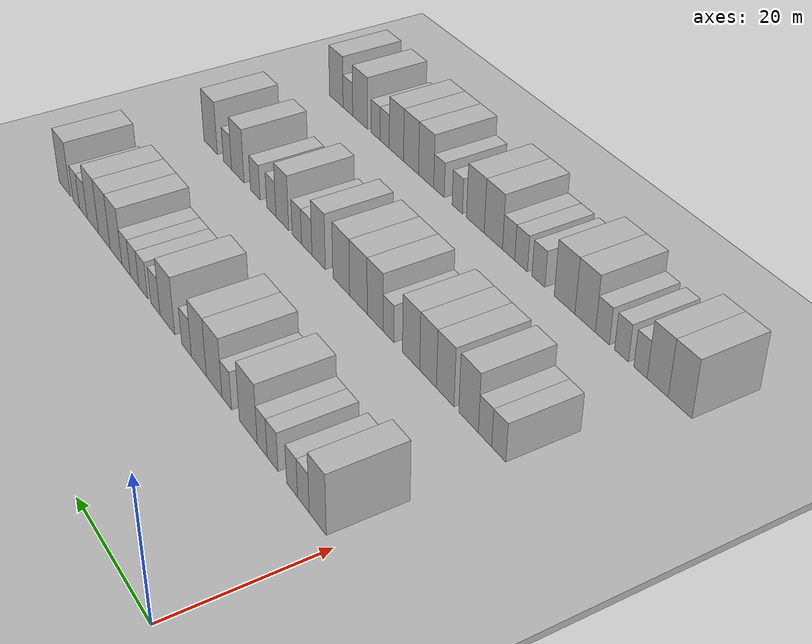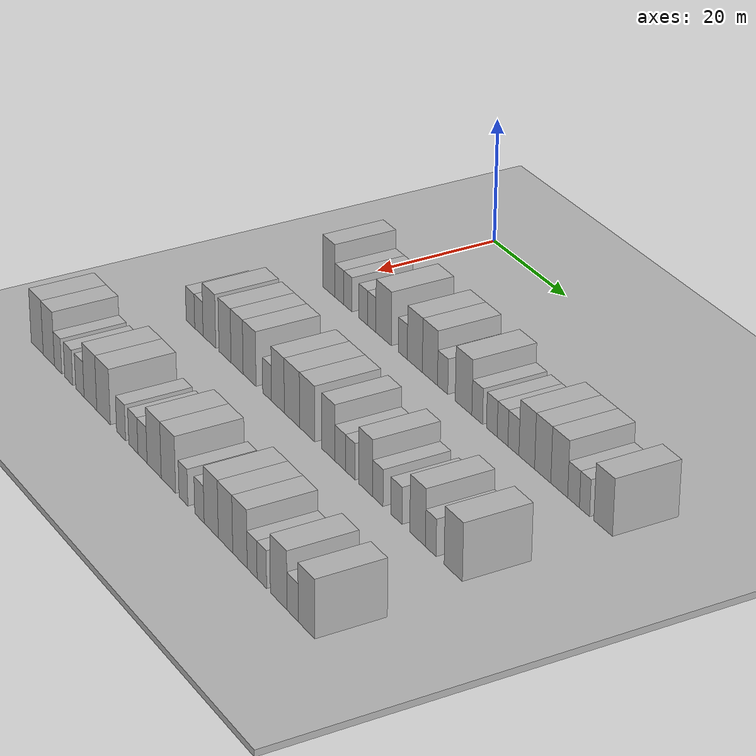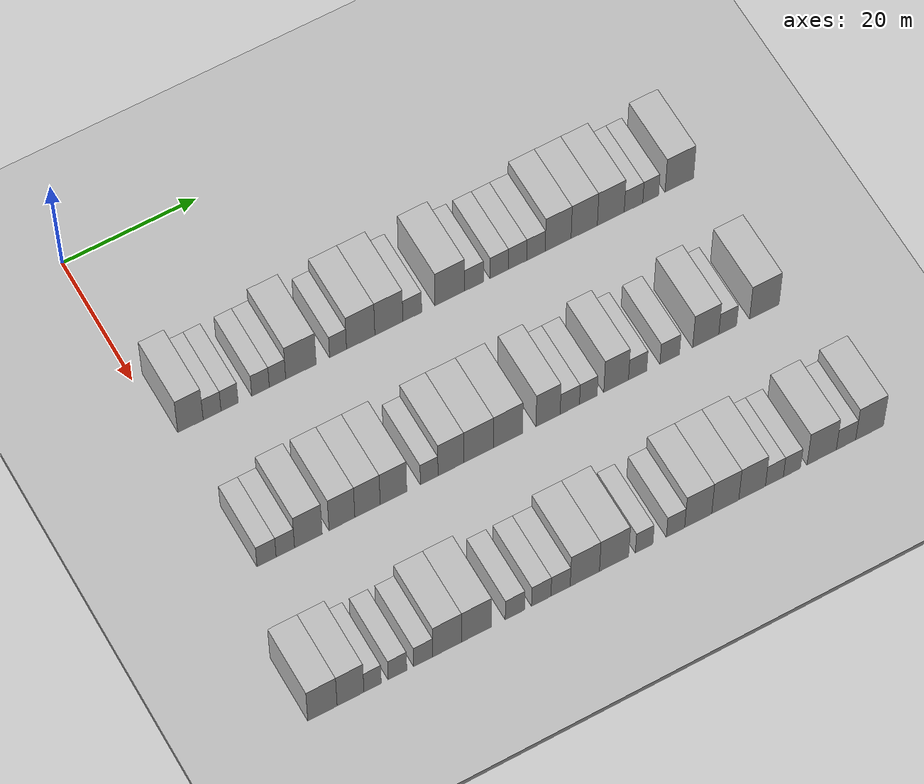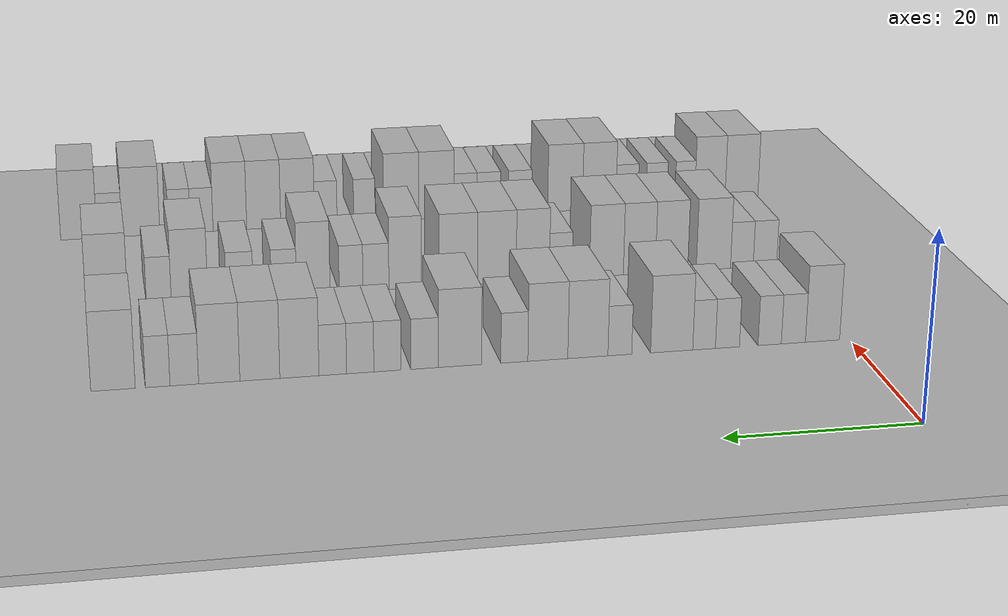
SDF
<sdf version="1.6">
 <world name="default">
  <include><name>ground_plane_1</name><uri>model://HANNAS_ground_plane</uri></include>
  <include>
   <name>ground_plane_2</name>
   <uri>model://HANNAS_ground_plane</uri>
   <pose>100 0 0  0 0 0</pose>
  </include>
  <model name="building_68">
   <static>1</static>
   <pose>25.0000 3.3737 0 0.000000 0.000000 0.000000</pose>
   <link name="link">
    <pose>0 0 4.50 0 0 0</pose>
    <collision name="collision"><geometry><box><size>10.0000 3.7300 9.0000</size></box></geometry></collision>
    <visual name="visual">
     <cast_shadows>0</cast_shadows>
     <geometry><box><size>10.0000 3.7300 9.0000</size></box></geometry>
     <material>
      <script>
       <uri>model://HANNAS_wall/materials/scripts</uri>
       <uri>model://HANNAS_wall/materials/textures</uri>
       <name>vrc/HANNAS_wall</name>
      </script>
     </material>
    </visual>
   </link>
  </model>
  <model name="building_69">
   <static>1</static>
   <pose>25.0000 6.5480 0 0.000000 0.000000 0.000000</pose>
   <link name="link">
    <pose>0 0 3.00 0 0 0</pose>
    <collision name="collision"><geometry><box><size>10.0000 2.6185 6.0000</size></box></geometry></collision>
    <visual name="visual">
     <cast_shadows>0</cast_shadows>
     <geometry><box><size>10.0000 2.6185 6.0000</size></box></geometry>
     <material>
      <script>
       <uri>model://HANNAS_wall/materials/scripts</uri>
       <uri>model://HANNAS_wall/materials/textures</uri>
       <name>vrc/HANNAS_wall</name>
      </script>
     </material>
    </visual>
   </link>
  </model>
  <model name="building_70">
   <static>1</static>
   <pose>25.0000 9.1156 0 0.000000 0.000000 0.000000</pose>
   <link name="link">
    <pose>0 0 3.00 0 0 0</pose>
    <collision name="collision"><geometry><box><size>10.0000 2.5166 6.0000</size></box></geometry></collision>
    <visual name="visual">
     <cast_shadows>0</cast_shadows>
     <geometry><box><size>10.0000 2.5166 6.0000</size></box></geometry>
     <material>
      <script>
       <uri>model://HANNAS_wall/materials/scripts</uri>
       <uri>model://HANNAS_wall/materials/textures</uri>
       <name>vrc/HANNAS_wall</name>
      </script>
     </material>
    </visual>
   </link>
  </model>
  <model name="building_71">
   <static>1</static>
   <pose>25.0000 13.6693 0 0.000000 0.000000 0.000000</pose>
   <link name="link">
    <pose>0 0 3.00 0 0 0</pose>
    <collision name="collision"><geometry><box><size>10.0000 2.5907 6.0000</size></box></geometry></collision>
    <visual name="visual">
     <cast_shadows>0</cast_shadows>
     <geometry><box><size>10.0000 2.5907 6.0000</size></box></geometry>
     <material>
      <script>
       <uri>model://HANNAS_wall/materials/scripts</uri>
       <uri>model://HANNAS_wall/materials/textures</uri>
       <name>vrc/HANNAS_wall</name>
      </script>
     </material>
    </visual>
   </link>
  </model>
  <model name="building_72">
   <static>1</static>
   <pose>25.0000 16.1778 0 0.000000 0.000000 0.000000</pose>
   <link name="link">
    <pose>0 0 3.00 0 0 0</pose>
    <collision name="collision"><geometry><box><size>10.0000 2.4264 6.0000</size></box></geometry></collision>
    <visual name="visual">
     <cast_shadows>0</cast_shadows>
     <geometry><box><size>10.0000 2.4264 6.0000</size></box></geometry>
     <material>
      <script>
       <uri>model://HANNAS_wall/materials/scripts</uri>
       <uri>model://HANNAS_wall/materials/textures</uri>
       <name>vrc/HANNAS_wall</name>
      </script>
     </material>
    </visual>
   </link>
  </model>
  <model name="building_73">
   <static>1</static>
   <pose>25.0000 19.6406 0 0.000000 0.000000 0.000000</pose>
   <link name="link">
    <pose>0 0 4.50 0 0 0</pose>
    <collision name="collision"><geometry><box><size>10.0000 4.4991 9.0000</size></box></geometry></collision>
    <visual name="visual">
     <cast_shadows>0</cast_shadows>
     <geometry><box><size>10.0000 4.4991 9.0000</size></box></geometry>
     <material>
      <script>
       <uri>model://HANNAS_wall/materials/scripts</uri>
       <uri>model://HANNAS_wall/materials/textures</uri>
       <name>vrc/HANNAS_wall</name>
      </script>
     </material>
    </visual>
   </link>
  </model>
  <model name="building_74">
   <static>1</static>
   <pose>25.0000 25.1508 0 0.000000 0.000000 0.000000</pose>
   <link name="link">
    <pose>0 0 3.00 0 0 0</pose>
    <collision name="collision"><geometry><box><size>10.0000 2.5212 6.0000</size></box></geometry></collision>
    <visual name="visual">
     <cast_shadows>0</cast_shadows>
     <geometry><box><size>10.0000 2.5212 6.0000</size></box></geometry>
     <material>
      <script>
       <uri>model://HANNAS_wall/materials/scripts</uri>
       <uri>model://HANNAS_wall/materials/textures</uri>
       <name>vrc/HANNAS_wall</name>
      </script>
     </material>
    </visual>
   </link>
  </model>
  <model name="building_75">
   <static>1</static>
   <pose>25.0000 28.5255 0 0.000000 0.000000 0.000000</pose>
   <link name="link">
    <pose>0 0 4.50 0 0 0</pose>
    <collision name="collision"><geometry><box><size>10.0000 4.2283 9.0000</size></box></geometry></collision>
    <visual name="visual">
     <cast_shadows>0</cast_shadows>
     <geometry><box><size>10.0000 4.2283 9.0000</size></box></geometry>
     <material>
      <script>
       <uri>model://HANNAS_wall/materials/scripts</uri>
       <uri>model://HANNAS_wall/materials/textures</uri>
       <name>vrc/HANNAS_wall</name>
      </script>
     </material>
    </visual>
   </link>
  </model>
  <model name="building_76">
   <static>1</static>
   <pose>25.0000 32.7305 0 0.000000 0.000000 0.000000</pose>
   <link name="link">
    <pose>0 0 4.50 0 0 0</pose>
    <collision name="collision"><geometry><box><size>10.0000 4.1818 9.0000</size></box></geometry></collision>
    <visual name="visual">
     <cast_shadows>0</cast_shadows>
     <geometry><box><size>10.0000 4.1818 9.0000</size></box></geometry>
     <material>
      <script>
       <uri>model://HANNAS_wall/materials/scripts</uri>
       <uri>model://HANNAS_wall/materials/textures</uri>
       <name>vrc/HANNAS_wall</name>
      </script>
     </material>
    </visual>
   </link>
  </model>
  <model name="building_77">
   <static>1</static>
   <pose>25.0000 36.2340 0 0.000000 0.000000 0.000000</pose>
   <link name="link">
    <pose>0 0 3.00 0 0 0</pose>
    <collision name="collision"><geometry><box><size>10.0000 2.8250 6.0000</size></box></geometry></collision>
    <visual name="visual">
     <cast_shadows>0</cast_shadows>
     <geometry><box><size>10.0000 2.8250 6.0000</size></box></geometry>
     <material>
      <script>
       <uri>model://HANNAS_wall/materials/scripts</uri>
       <uri>model://HANNAS_wall/materials/textures</uri>
       <name>vrc/HANNAS_wall</name>
      </script>
     </material>
    </visual>
   </link>
  </model>
  <model name="building_78">
   <static>1</static>
   <pose>25.0000 41.8731 0 0.000000 0.000000 0.000000</pose>
   <link name="link">
    <pose>0 0 4.50 0 0 0</pose>
    <collision name="collision"><geometry><box><size>10.0000 4.4532 9.0000</size></box></geometry></collision>
    <visual name="visual">
     <cast_shadows>0</cast_shadows>
     <geometry><box><size>10.0000 4.4532 9.0000</size></box></geometry>
     <material>
      <script>
       <uri>model://HANNAS_wall/materials/scripts</uri>
       <uri>model://HANNAS_wall/materials/textures</uri>
       <name>vrc/HANNAS_wall</name>
      </script>
     </material>
    </visual>
   </link>
  </model>
  <model name="building_79">
   <static>1</static>
   <pose>25.0000 45.5227 0 0.000000 0.000000 0.000000</pose>
   <link name="link">
    <pose>0 0 3.00 0 0 0</pose>
    <collision name="collision"><geometry><box><size>10.0000 2.8459 6.0000</size></box></geometry></collision>
    <visual name="visual">
     <cast_shadows>0</cast_shadows>
     <geometry><box><size>10.0000 2.8459 6.0000</size></box></geometry>
     <material>
      <script>
       <uri>model://HANNAS_wall/materials/scripts</uri>
       <uri>model://HANNAS_wall/materials/textures</uri>
       <name>vrc/HANNAS_wall</name>
      </script>
     </material>
    </visual>
   </link>
  </model>
  <model name="building_80">
   <static>1</static>
   <pose>25.0000 49.3388 0 0.000000 0.000000 0.000000</pose>
   <link name="link">
    <pose>0 0 3.00 0 0 0</pose>
    <collision name="collision"><geometry><box><size>10.0000 2.7863 6.0000</size></box></geometry></collision>
    <visual name="visual">
     <cast_shadows>0</cast_shadows>
     <geometry><box><size>10.0000 2.7863 6.0000</size></box></geometry>
     <material>
      <script>
       <uri>model://HANNAS_wall/materials/scripts</uri>
       <uri>model://HANNAS_wall/materials/textures</uri>
       <name>vrc/HANNAS_wall</name>
      </script>
     </material>
    </visual>
   </link>
  </model>
  <model name="building_81">
   <static>1</static>
   <pose>25.0000 52.1222 0 0.000000 0.000000 0.000000</pose>
   <link name="link">
    <pose>0 0 3.00 0 0 0</pose>
    <collision name="collision"><geometry><box><size>10.0000 2.7805 6.0000</size></box></geometry></collision>
    <visual name="visual">
     <cast_shadows>0</cast_shadows>
     <geometry><box><size>10.0000 2.7805 6.0000</size></box></geometry>
     <material>
      <script>
       <uri>model://HANNAS_wall/materials/scripts</uri>
       <uri>model://HANNAS_wall/materials/textures</uri>
       <name>vrc/HANNAS_wall</name>
      </script>
     </material>
    </visual>
   </link>
  </model>
  <model name="building_82">
   <static>1</static>
   <pose>25.0000 54.9152 0 0.000000 0.000000 0.000000</pose>
   <link name="link">
    <pose>0 0 3.00 0 0 0</pose>
    <collision name="collision"><geometry><box><size>10.0000 2.8055 6.0000</size></box></geometry></collision>
    <visual name="visual">
     <cast_shadows>0</cast_shadows>
     <geometry><box><size>10.0000 2.8055 6.0000</size></box></geometry>
     <material>
      <script>
       <uri>model://HANNAS_wall/materials/scripts</uri>
       <uri>model://HANNAS_wall/materials/textures</uri>
       <name>vrc/HANNAS_wall</name>
      </script>
     </material>
    </visual>
   </link>
  </model>
  <model name="building_83">
   <static>1</static>
   <pose>25.0000 58.2975 0 0.000000 0.000000 0.000000</pose>
   <link name="link">
    <pose>0 0 4.50 0 0 0</pose>
    <collision name="collision"><geometry><box><size>10.0000 3.9589 9.0000</size></box></geometry></collision>
    <visual name="visual">
     <cast_shadows>0</cast_shadows>
     <geometry><box><size>10.0000 3.9589 9.0000</size></box></geometry>
     <material>
      <script>
       <uri>model://HANNAS_wall/materials/scripts</uri>
       <uri>model://HANNAS_wall/materials/textures</uri>
       <name>vrc/HANNAS_wall</name>
      </script>
     </material>
    </visual>
   </link>
  </model>
  <model name="building_84">
   <static>1</static>
   <pose>25.0000 62.2839 0 0.000000 0.000000 0.000000</pose>
   <link name="link">
    <pose>0 0 4.50 0 0 0</pose>
    <collision name="collision"><geometry><box><size>10.0000 4.0139 9.0000</size></box></geometry></collision>
    <visual name="visual">
     <cast_shadows>0</cast_shadows>
     <geometry><box><size>10.0000 4.0139 9.0000</size></box></geometry>
     <material>
      <script>
       <uri>model://HANNAS_wall/materials/scripts</uri>
       <uri>model://HANNAS_wall/materials/textures</uri>
       <name>vrc/HANNAS_wall</name>
      </script>
     </material>
    </visual>
   </link>
  </model>
  <model name="building_85">
   <static>1</static>
   <pose>25.0000 66.3540 0 0.000000 0.000000 0.000000</pose>
   <link name="link">
    <pose>0 0 4.50 0 0 0</pose>
    <collision name="collision"><geometry><box><size>10.0000 4.1264 9.0000</size></box></geometry></collision>
    <visual name="visual">
     <cast_shadows>0</cast_shadows>
     <geometry><box><size>10.0000 4.1264 9.0000</size></box></geometry>
     <material>
      <script>
       <uri>model://HANNAS_wall/materials/scripts</uri>
       <uri>model://HANNAS_wall/materials/textures</uri>
       <name>vrc/HANNAS_wall</name>
      </script>
     </material>
    </visual>
   </link>
  </model>
  <model name="building_86">
   <static>1</static>
   <pose>25.0000 69.8412 0 0.000000 0.000000 0.000000</pose>
   <link name="link">
    <pose>0 0 3.00 0 0 0</pose>
    <collision name="collision"><geometry><box><size>10.0000 2.8480 6.0000</size></box></geometry></collision>
    <visual name="visual">
     <cast_shadows>0</cast_shadows>
     <geometry><box><size>10.0000 2.8480 6.0000</size></box></geometry>
     <material>
      <script>
       <uri>model://HANNAS_wall/materials/scripts</uri>
       <uri>model://HANNAS_wall/materials/textures</uri>
       <name>vrc/HANNAS_wall</name>
      </script>
     </material>
    </visual>
   </link>
  </model>
  <model name="building_87">
   <static>1</static>
   <pose>25.0000 72.4859 0 0.000000 0.000000 0.000000</pose>
   <link name="link">
    <pose>0 0 3.00 0 0 0</pose>
    <collision name="collision"><geometry><box><size>10.0000 2.4414 6.0000</size></box></geometry></collision>
    <visual name="visual">
     <cast_shadows>0</cast_shadows>
     <geometry><box><size>10.0000 2.4414 6.0000</size></box></geometry>
     <material>
      <script>
       <uri>model://HANNAS_wall/materials/scripts</uri>
       <uri>model://HANNAS_wall/materials/textures</uri>
       <name>vrc/HANNAS_wall</name>
      </script>
     </material>
    </visual>
   </link>
  </model>
  <model name="building_88">
   <static>1</static>
   <pose>25.0000 76.9000 0 0.000000 0.000000 0.000000</pose>
   <link name="link">
    <pose>0 0 4.50 0 0 0</pose>
    <collision name="collision"><geometry><box><size>10.0000 4.3868 9.0000</size></box></geometry></collision>
    <visual name="visual">
     <cast_shadows>0</cast_shadows>
     <geometry><box><size>10.0000 4.3868 9.0000</size></box></geometry>
     <material>
      <script>
       <uri>model://HANNAS_wall/materials/scripts</uri>
       <uri>model://HANNAS_wall/materials/textures</uri>
       <name>vrc/HANNAS_wall</name>
      </script>
     </material>
    </visual>
   </link>
  </model>
  <model name="building_199">
   <static>1</static>
   <pose>47.0000 2.7387 0 0.000000 0.000000 0.000000</pose>
   <link name="link">
    <pose>0 0 3.00 0 0 0</pose>
    <collision name="collision"><geometry><box><size>10.0000 2.7707 6.0000</size></box></geometry></collision>
    <visual name="visual">
     <cast_shadows>0</cast_shadows>
     <geometry><box><size>10.0000 2.7707 6.0000</size></box></geometry>
     <material>
      <script>
       <uri>model://HANNAS_wall/materials/scripts</uri>
       <uri>model://HANNAS_wall/materials/textures</uri>
       <name>vrc/HANNAS_wall</name>
      </script>
     </material>
    </visual>
   </link>
  </model>
  <model name="building_200">
   <static>1</static>
   <pose>47.0000 5.4608 0 0.000000 0.000000 0.000000</pose>
   <link name="link">
    <pose>0 0 3.00 0 0 0</pose>
    <collision name="collision"><geometry><box><size>10.0000 2.6737 6.0000</size></box></geometry></collision>
    <visual name="visual">
     <cast_shadows>0</cast_shadows>
     <geometry><box><size>10.0000 2.6737 6.0000</size></box></geometry>
     <material>
      <script>
       <uri>model://HANNAS_wall/materials/scripts</uri>
       <uri>model://HANNAS_wall/materials/textures</uri>
       <name>vrc/HANNAS_wall</name>
      </script>
     </material>
    </visual>
   </link>
  </model>
  <model name="building_201">
   <static>1</static>
   <pose>47.0000 8.8042 0 0.000000 0.000000 0.000000</pose>
   <link name="link">
    <pose>0 0 4.50 0 0 0</pose>
    <collision name="collision"><geometry><box><size>10.0000 4.0131 9.0000</size></box></geometry></collision>
    <visual name="visual">
     <cast_shadows>0</cast_shadows>
     <geometry><box><size>10.0000 4.0131 9.0000</size></box></geometry>
     <material>
      <script>
       <uri>model://HANNAS_wall/materials/scripts</uri>
       <uri>model://HANNAS_wall/materials/textures</uri>
       <name>vrc/HANNAS_wall</name>
      </script>
     </material>
    </visual>
   </link>
  </model>
  <model name="building_202">
   <static>1</static>
   <pose>47.0000 13.6943 0 0.000000 0.000000 0.000000</pose>
   <link name="link">
    <pose>0 0 4.50 0 0 0</pose>
    <collision name="collision"><geometry><box><size>10.0000 3.7670 9.0000</size></box></geometry></collision>
    <visual name="visual">
     <cast_shadows>0</cast_shadows>
     <geometry><box><size>10.0000 3.7670 9.0000</size></box></geometry>
     <material>
      <script>
       <uri>model://HANNAS_wall/materials/scripts</uri>
       <uri>model://HANNAS_wall/materials/textures</uri>
       <name>vrc/HANNAS_wall</name>
      </script>
     </material>
    </visual>
   </link>
  </model>
  <model name="building_203">
   <static>1</static>
   <pose>47.0000 17.4329 0 0.000000 0.000000 0.000000</pose>
   <link name="link">
    <pose>0 0 4.50 0 0 0</pose>
    <collision name="collision"><geometry><box><size>10.0000 3.7102 9.0000</size></box></geometry></collision>
    <visual name="visual">
     <cast_shadows>0</cast_shadows>
     <geometry><box><size>10.0000 3.7102 9.0000</size></box></geometry>
     <material>
      <script>
       <uri>model://HANNAS_wall/materials/scripts</uri>
       <uri>model://HANNAS_wall/materials/textures</uri>
       <name>vrc/HANNAS_wall</name>
      </script>
     </material>
    </visual>
   </link>
  </model>
  <model name="building_204">
   <static>1</static>
   <pose>47.0000 21.2386 0 0.000000 0.000000 0.000000</pose>
   <link name="link">
    <pose>0 0 4.50 0 0 0</pose>
    <collision name="collision"><geometry><box><size>10.0000 3.9012 9.0000</size></box></geometry></collision>
    <visual name="visual">
     <cast_shadows>0</cast_shadows>
     <geometry><box><size>10.0000 3.9012 9.0000</size></box></geometry>
     <material>
      <script>
       <uri>model://HANNAS_wall/materials/scripts</uri>
       <uri>model://HANNAS_wall/materials/textures</uri>
       <name>vrc/HANNAS_wall</name>
      </script>
     </material>
    </visual>
   </link>
  </model>
  <model name="building_205">
   <static>1</static>
   <pose>47.0000 26.4906 0 0.000000 0.000000 0.000000</pose>
   <link name="link">
    <pose>0 0 3.00 0 0 0</pose>
    <collision name="collision"><geometry><box><size>10.0000 2.6029 6.0000</size></box></geometry></collision>
    <visual name="visual">
     <cast_shadows>0</cast_shadows>
     <geometry><box><size>10.0000 2.6029 6.0000</size></box></geometry>
     <material>
      <script>
       <uri>model://HANNAS_wall/materials/scripts</uri>
       <uri>model://HANNAS_wall/materials/textures</uri>
       <name>vrc/HANNAS_wall</name>
      </script>
     </material>
    </visual>
   </link>
  </model>
  <model name="building_206">
   <static>1</static>
   <pose>47.0000 29.6896 0 0.000000 0.000000 0.000000</pose>
   <link name="link">
    <pose>0 0 4.50 0 0 0</pose>
    <collision name="collision"><geometry><box><size>10.0000 3.7950 9.0000</size></box></geometry></collision>
    <visual name="visual">
     <cast_shadows>0</cast_shadows>
     <geometry><box><size>10.0000 3.7950 9.0000</size></box></geometry>
     <material>
      <script>
       <uri>model://HANNAS_wall/materials/scripts</uri>
       <uri>model://HANNAS_wall/materials/textures</uri>
       <name>vrc/HANNAS_wall</name>
      </script>
     </material>
    </visual>
   </link>
  </model>
  <model name="building_207">
   <static>1</static>
   <pose>47.0000 33.7867 0 0.000000 0.000000 0.000000</pose>
   <link name="link">
    <pose>0 0 4.50 0 0 0</pose>
    <collision name="collision"><geometry><box><size>10.0000 4.3993 9.0000</size></box></geometry></collision>
    <visual name="visual">
     <cast_shadows>0</cast_shadows>
     <geometry><box><size>10.0000 4.3993 9.0000</size></box></geometry>
     <material>
      <script>
       <uri>model://HANNAS_wall/materials/scripts</uri>
       <uri>model://HANNAS_wall/materials/textures</uri>
       <name>vrc/HANNAS_wall</name>
      </script>
     </material>
    </visual>
   </link>
  </model>
  <model name="building_208">
   <static>1</static>
   <pose>47.0000 38.1537 0 0.000000 0.000000 0.000000</pose>
   <link name="link">
    <pose>0 0 4.50 0 0 0</pose>
    <collision name="collision"><geometry><box><size>10.0000 4.3348 9.0000</size></box></geometry></collision>
    <visual name="visual">
     <cast_shadows>0</cast_shadows>
     <geometry><box><size>10.0000 4.3348 9.0000</size></box></geometry>
     <material>
      <script>
       <uri>model://HANNAS_wall/materials/scripts</uri>
       <uri>model://HANNAS_wall/materials/textures</uri>
       <name>vrc/HANNAS_wall</name>
      </script>
     </material>
    </visual>
   </link>
  </model>
  <model name="building_209">
   <static>1</static>
   <pose>47.0000 44.1318 0 0.000000 0.000000 0.000000</pose>
   <link name="link">
    <pose>0 0 4.50 0 0 0</pose>
    <collision name="collision"><geometry><box><size>10.0000 3.6214 9.0000</size></box></geometry></collision>
    <visual name="visual">
     <cast_shadows>0</cast_shadows>
     <geometry><box><size>10.0000 3.6214 9.0000</size></box></geometry>
     <material>
      <script>
       <uri>model://HANNAS_wall/materials/scripts</uri>
       <uri>model://HANNAS_wall/materials/textures</uri>
       <name>vrc/HANNAS_wall</name>
      </script>
     </material>
    </visual>
   </link>
  </model>
  <model name="building_210">
   <static>1</static>
   <pose>47.0000 47.3916 0 0.000000 0.000000 0.000000</pose>
   <link name="link">
    <pose>0 0 3.00 0 0 0</pose>
    <collision name="collision"><geometry><box><size>10.0000 2.8982 6.0000</size></box></geometry></collision>
    <visual name="visual">
     <cast_shadows>0</cast_shadows>
     <geometry><box><size>10.0000 2.8982 6.0000</size></box></geometry>
     <material>
      <script>
       <uri>model://HANNAS_wall/materials/scripts</uri>
       <uri>model://HANNAS_wall/materials/textures</uri>
       <name>vrc/HANNAS_wall</name>
      </script>
     </material>
    </visual>
   </link>
  </model>
  <model name="building_211">
   <static>1</static>
   <pose>47.0000 50.1635 0 0.000000 0.000000 0.000000</pose>
   <link name="link">
    <pose>0 0 3.00 0 0 0</pose>
    <collision name="collision"><geometry><box><size>10.0000 2.6455 6.0000</size></box></geometry></collision>
    <visual name="visual">
     <cast_shadows>0</cast_shadows>
     <geometry><box><size>10.0000 2.6455 6.0000</size></box></geometry>
     <material>
      <script>
       <uri>model://HANNAS_wall/materials/scripts</uri>
       <uri>model://HANNAS_wall/materials/textures</uri>
       <name>vrc/HANNAS_wall</name>
      </script>
     </material>
    </visual>
   </link>
  </model>
  <model name="building_212">
   <static>1</static>
   <pose>47.0000 54.3451 0 0.000000 0.000000 0.000000</pose>
   <link name="link">
    <pose>0 0 4.50 0 0 0</pose>
    <collision name="collision"><geometry><box><size>10.0000 3.7178 9.0000</size></box></geometry></collision>
    <visual name="visual">
     <cast_shadows>0</cast_shadows>
     <geometry><box><size>10.0000 3.7178 9.0000</size></box></geometry>
     <material>
      <script>
       <uri>model://HANNAS_wall/materials/scripts</uri>
       <uri>model://HANNAS_wall/materials/textures</uri>
       <name>vrc/HANNAS_wall</name>
      </script>
     </material>
    </visual>
   </link>
  </model>
  <model name="building_213">
   <static>1</static>
   <pose>47.0000 57.5817 0 0.000000 0.000000 0.000000</pose>
   <link name="link">
    <pose>0 0 3.00 0 0 0</pose>
    <collision name="collision"><geometry><box><size>10.0000 2.7553 6.0000</size></box></geometry></collision>
    <visual name="visual">
     <cast_shadows>0</cast_shadows>
     <geometry><box><size>10.0000 2.7553 6.0000</size></box></geometry>
     <material>
      <script>
       <uri>model://HANNAS_wall/materials/scripts</uri>
       <uri>model://HANNAS_wall/materials/textures</uri>
       <name>vrc/HANNAS_wall</name>
      </script>
     </material>
    </visual>
   </link>
  </model>
  <model name="building_214">
   <static>1</static>
   <pose>47.0000 62.4388 0 0.000000 0.000000 0.000000</pose>
   <link name="link">
    <pose>0 0 3.00 0 0 0</pose>
    <collision name="collision"><geometry><box><size>10.0000 2.9589 6.0000</size></box></geometry></collision>
    <visual name="visual">
     <cast_shadows>0</cast_shadows>
     <geometry><box><size>10.0000 2.9589 6.0000</size></box></geometry>
     <material>
      <script>
       <uri>model://HANNAS_wall/materials/scripts</uri>
       <uri>model://HANNAS_wall/materials/textures</uri>
       <name>vrc/HANNAS_wall</name>
      </script>
     </material>
    </visual>
   </link>
  </model>
  <model name="building_215">
   <static>1</static>
   <pose>47.0000 67.9080 0 0.000000 0.000000 0.000000</pose>
   <link name="link">
    <pose>0 0 4.50 0 0 0</pose>
    <collision name="collision"><geometry><box><size>10.0000 3.9795 9.0000</size></box></geometry></collision>
    <visual name="visual">
     <cast_shadows>0</cast_shadows>
     <geometry><box><size>10.0000 3.9795 9.0000</size></box></geometry>
     <material>
      <script>
       <uri>model://HANNAS_wall/materials/scripts</uri>
       <uri>model://HANNAS_wall/materials/textures</uri>
       <name>vrc/HANNAS_wall</name>
      </script>
     </material>
    </visual>
   </link>
  </model>
  <model name="building_216">
   <static>1</static>
   <pose>47.0000 71.2483 0 0.000000 0.000000 0.000000</pose>
   <link name="link">
    <pose>0 0 3.00 0 0 0</pose>
    <collision name="collision"><geometry><box><size>10.0000 2.7011 6.0000</size></box></geometry></collision>
    <visual name="visual">
     <cast_shadows>0</cast_shadows>
     <geometry><box><size>10.0000 2.7011 6.0000</size></box></geometry>
     <material>
      <script>
       <uri>model://HANNAS_wall/materials/scripts</uri>
       <uri>model://HANNAS_wall/materials/textures</uri>
       <name>vrc/HANNAS_wall</name>
      </script>
     </material>
    </visual>
   </link>
  </model>
  <model name="building_217">
   <static>1</static>
   <pose>47.0000 76.8460 0 0.000000 0.000000 0.000000</pose>
   <link name="link">
    <pose>0 0 4.50 0 0 0</pose>
    <collision name="collision"><geometry><box><size>10.0000 4.4944 9.0000</size></box></geometry></collision>
    <visual name="visual">
     <cast_shadows>0</cast_shadows>
     <geometry><box><size>10.0000 4.4944 9.0000</size></box></geometry>
     <material>
      <script>
       <uri>model://HANNAS_wall/materials/scripts</uri>
       <uri>model://HANNAS_wall/materials/textures</uri>
       <name>vrc/HANNAS_wall</name>
      </script>
     </material>
    </visual>
   </link>
  </model>
  <model name="building_316">
   <static>1</static>
   <pose>69.0000 -1.1263 0 0.000000 0.000000 0.000000</pose>
   <link name="link">
    <pose>0 0 4.50 0 0 0</pose>
    <collision name="collision"><geometry><box><size>10.0000 4.1881 9.0000</size></box></geometry></collision>
    <visual name="visual">
     <cast_shadows>0</cast_shadows>
     <geometry><box><size>10.0000 4.1881 9.0000</size></box></geometry>
     <material>
      <script>
       <uri>model://HANNAS_wall/materials/scripts</uri>
       <uri>model://HANNAS_wall/materials/textures</uri>
       <name>vrc/HANNAS_wall</name>
      </script>
     </material>
    </visual>
   </link>
  </model>
  <model name="building_317">
   <static>1</static>
   <pose>69.0000 2.8905 0 0.000000 0.000000 0.000000</pose>
   <link name="link">
    <pose>0 0 4.50 0 0 0</pose>
    <collision name="collision"><geometry><box><size>10.0000 3.8454 9.0000</size></box></geometry></collision>
    <visual name="visual">
     <cast_shadows>0</cast_shadows>
     <geometry><box><size>10.0000 3.8454 9.0000</size></box></geometry>
     <material>
      <script>
       <uri>model://HANNAS_wall/materials/scripts</uri>
       <uri>model://HANNAS_wall/materials/textures</uri>
       <name>vrc/HANNAS_wall</name>
      </script>
     </material>
    </visual>
   </link>
  </model>
  <model name="building_318">
   <static>1</static>
   <pose>69.0000 6.0544 0 0.000000 0.000000 0.000000</pose>
   <link name="link">
    <pose>0 0 3.00 0 0 0</pose>
    <collision name="collision"><geometry><box><size>10.0000 2.4822 6.0000</size></box></geometry></collision>
    <visual name="visual">
     <cast_shadows>0</cast_shadows>
     <geometry><box><size>10.0000 2.4822 6.0000</size></box></geometry>
     <material>
      <script>
       <uri>model://HANNAS_wall/materials/scripts</uri>
       <uri>model://HANNAS_wall/materials/textures</uri>
       <name>vrc/HANNAS_wall</name>
      </script>
     </material>
    </visual>
   </link>
  </model>
  <model name="building_319">
   <static>1</static>
   <pose>69.0000 9.6330 0 0.000000 0.000000 0.000000</pose>
   <link name="link">
    <pose>0 0 3.00 0 0 0</pose>
    <collision name="collision"><geometry><box><size>10.0000 2.6751 6.0000</size></box></geometry></collision>
    <visual name="visual">
     <cast_shadows>0</cast_shadows>
     <geometry><box><size>10.0000 2.6751 6.0000</size></box></geometry>
     <material>
      <script>
       <uri>model://HANNAS_wall/materials/scripts</uri>
       <uri>model://HANNAS_wall/materials/textures</uri>
       <name>vrc/HANNAS_wall</name>
      </script>
     </material>
    </visual>
   </link>
  </model>
  <model name="building_320">
   <static>1</static>
   <pose>69.0000 13.3513 0 0.000000 0.000000 0.000000</pose>
   <link name="link">
    <pose>0 0 3.00 0 0 0</pose>
    <collision name="collision"><geometry><box><size>10.0000 2.7615 6.0000</size></box></geometry></collision>
    <visual name="visual">
     <cast_shadows>0</cast_shadows>
     <geometry><box><size>10.0000 2.7615 6.0000</size></box></geometry>
     <material>
      <script>
       <uri>model://HANNAS_wall/materials/scripts</uri>
       <uri>model://HANNAS_wall/materials/textures</uri>
       <name>vrc/HANNAS_wall</name>
      </script>
     </material>
    </visual>
   </link>
  </model>
  <model name="building_321">
   <static>1</static>
   <pose>69.0000 16.8161 0 0.000000 0.000000 0.000000</pose>
   <link name="link">
    <pose>0 0 4.50 0 0 0</pose>
    <collision name="collision"><geometry><box><size>10.0000 4.1680 9.0000</size></box></geometry></collision>
    <visual name="visual">
     <cast_shadows>0</cast_shadows>
     <geometry><box><size>10.0000 4.1680 9.0000</size></box></geometry>
     <material>
      <script>
       <uri>model://HANNAS_wall/materials/scripts</uri>
       <uri>model://HANNAS_wall/materials/textures</uri>
       <name>vrc/HANNAS_wall</name>
      </script>
     </material>
    </visual>
   </link>
  </model>
  <model name="building_322">
   <static>1</static>
   <pose>69.0000 21.0716 0 0.000000 0.000000 0.000000</pose>
   <link name="link">
    <pose>0 0 4.50 0 0 0</pose>
    <collision name="collision"><geometry><box><size>10.0000 4.3431 9.0000</size></box></geometry></collision>
    <visual name="visual">
     <cast_shadows>0</cast_shadows>
     <geometry><box><size>10.0000 4.3431 9.0000</size></box></geometry>
     <material>
      <script>
       <uri>model://HANNAS_wall/materials/scripts</uri>
       <uri>model://HANNAS_wall/materials/textures</uri>
       <name>vrc/HANNAS_wall</name>
      </script>
     </material>
    </visual>
   </link>
  </model>
  <model name="building_323">
   <static>1</static>
   <pose>69.0000 26.6615 0 0.000000 0.000000 0.000000</pose>
   <link name="link">
    <pose>0 0 3.00 0 0 0</pose>
    <collision name="collision"><geometry><box><size>10.0000 2.8368 6.0000</size></box></geometry></collision>
    <visual name="visual">
     <cast_shadows>0</cast_shadows>
     <geometry><box><size>10.0000 2.8368 6.0000</size></box></geometry>
     <material>
      <script>
       <uri>model://HANNAS_wall/materials/scripts</uri>
       <uri>model://HANNAS_wall/materials/textures</uri>
       <name>vrc/HANNAS_wall</name>
      </script>
     </material>
    </visual>
   </link>
  </model>
  <model name="building_324">
   <static>1</static>
   <pose>69.0000 30.5073 0 0.000000 0.000000 0.000000</pose>
   <link name="link">
    <pose>0 0 3.00 0 0 0</pose>
    <collision name="collision"><geometry><box><size>10.0000 2.8547 6.0000</size></box></geometry></collision>
    <visual name="visual">
     <cast_shadows>0</cast_shadows>
     <geometry><box><size>10.0000 2.8547 6.0000</size></box></geometry>
     <material>
      <script>
       <uri>model://HANNAS_wall/materials/scripts</uri>
       <uri>model://HANNAS_wall/materials/textures</uri>
       <name>vrc/HANNAS_wall</name>
      </script>
     </material>
    </visual>
   </link>
  </model>
  <model name="building_325">
   <static>1</static>
   <pose>69.0000 33.3444 0 0.000000 0.000000 0.000000</pose>
   <link name="link">
    <pose>0 0 3.00 0 0 0</pose>
    <collision name="collision"><geometry><box><size>10.0000 2.8195 6.0000</size></box></geometry></collision>
    <visual name="visual">
     <cast_shadows>0</cast_shadows>
     <geometry><box><size>10.0000 2.8195 6.0000</size></box></geometry>
     <material>
      <script>
       <uri>model://HANNAS_wall/materials/scripts</uri>
       <uri>model://HANNAS_wall/materials/textures</uri>
       <name>vrc/HANNAS_wall</name>
      </script>
     </material>
    </visual>
   </link>
  </model>
  <model name="building_326">
   <static>1</static>
   <pose>69.0000 36.9057 0 0.000000 0.000000 0.000000</pose>
   <link name="link">
    <pose>0 0 4.50 0 0 0</pose>
    <collision name="collision"><geometry><box><size>10.0000 4.3032 9.0000</size></box></geometry></collision>
    <visual name="visual">
     <cast_shadows>0</cast_shadows>
     <geometry><box><size>10.0000 4.3032 9.0000</size></box></geometry>
     <material>
      <script>
       <uri>model://HANNAS_wall/materials/scripts</uri>
       <uri>model://HANNAS_wall/materials/textures</uri>
       <name>vrc/HANNAS_wall</name>
      </script>
     </material>
    </visual>
   </link>
  </model>
  <model name="building_327">
   <static>1</static>
   <pose>69.0000 41.2068 0 0.000000 0.000000 0.000000</pose>
   <link name="link">
    <pose>0 0 4.50 0 0 0</pose>
    <collision name="collision"><geometry><box><size>10.0000 4.2992 9.0000</size></box></geometry></collision>
    <visual name="visual">
     <cast_shadows>0</cast_shadows>
     <geometry><box><size>10.0000 4.2992 9.0000</size></box></geometry>
     <material>
      <script>
       <uri>model://HANNAS_wall/materials/scripts</uri>
       <uri>model://HANNAS_wall/materials/textures</uri>
       <name>vrc/HANNAS_wall</name>
      </script>
     </material>
    </visual>
   </link>
  </model>
  <model name="building_328">
   <static>1</static>
   <pose>69.0000 45.6531 0 0.000000 0.000000 0.000000</pose>
   <link name="link">
    <pose>0 0 3.00 0 0 0</pose>
    <collision name="collision"><geometry><box><size>10.0000 2.5934 6.0000</size></box></geometry></collision>
    <visual name="visual">
     <cast_shadows>0</cast_shadows>
     <geometry><box><size>10.0000 2.5934 6.0000</size></box></geometry>
     <material>
      <script>
       <uri>model://HANNAS_wall/materials/scripts</uri>
       <uri>model://HANNAS_wall/materials/textures</uri>
       <name>vrc/HANNAS_wall</name>
      </script>
     </material>
    </visual>
   </link>
  </model>
  <model name="building_329">
   <static>1</static>
   <pose>69.0000 50.3093 0 0.000000 0.000000 0.000000</pose>
   <link name="link">
    <pose>0 0 3.00 0 0 0</pose>
    <collision name="collision"><geometry><box><size>10.0000 2.7189 6.0000</size></box></geometry></collision>
    <visual name="visual">
     <cast_shadows>0</cast_shadows>
     <geometry><box><size>10.0000 2.7189 6.0000</size></box></geometry>
     <material>
      <script>
       <uri>model://HANNAS_wall/materials/scripts</uri>
       <uri>model://HANNAS_wall/materials/textures</uri>
       <name>vrc/HANNAS_wall</name>
      </script>
     </material>
    </visual>
   </link>
  </model>
  <model name="building_330">
   <static>1</static>
   <pose>69.0000 53.6887 0 0.000000 0.000000 0.000000</pose>
   <link name="link">
    <pose>0 0 4.50 0 0 0</pose>
    <collision name="collision"><geometry><box><size>10.0000 4.0399 9.0000</size></box></geometry></collision>
    <visual name="visual">
     <cast_shadows>0</cast_shadows>
     <geometry><box><size>10.0000 4.0399 9.0000</size></box></geometry>
     <material>
      <script>
       <uri>model://HANNAS_wall/materials/scripts</uri>
       <uri>model://HANNAS_wall/materials/textures</uri>
       <name>vrc/HANNAS_wall</name>
      </script>
     </material>
    </visual>
   </link>
  </model>
  <model name="building_331">
   <static>1</static>
   <pose>69.0000 57.7308 0 0.000000 0.000000 0.000000</pose>
   <link name="link">
    <pose>0 0 4.50 0 0 0</pose>
    <collision name="collision"><geometry><box><size>10.0000 4.0443 9.0000</size></box></geometry></collision>
    <visual name="visual">
     <cast_shadows>0</cast_shadows>
     <geometry><box><size>10.0000 4.0443 9.0000</size></box></geometry>
     <material>
      <script>
       <uri>model://HANNAS_wall/materials/scripts</uri>
       <uri>model://HANNAS_wall/materials/textures</uri>
       <name>vrc/HANNAS_wall</name>
      </script>
     </material>
    </visual>
   </link>
  </model>
  <model name="building_332">
   <static>1</static>
   <pose>69.0000 61.7496 0 0.000000 0.000000 0.000000</pose>
   <link name="link">
    <pose>0 0 4.50 0 0 0</pose>
    <collision name="collision"><geometry><box><size>10.0000 3.9934 9.0000</size></box></geometry></collision>
    <visual name="visual">
     <cast_shadows>0</cast_shadows>
     <geometry><box><size>10.0000 3.9934 9.0000</size></box></geometry>
     <material>
      <script>
       <uri>model://HANNAS_wall/materials/scripts</uri>
       <uri>model://HANNAS_wall/materials/textures</uri>
       <name>vrc/HANNAS_wall</name>
      </script>
     </material>
    </visual>
   </link>
  </model>
  <model name="building_333">
   <static>1</static>
   <pose>69.0000 65.0935 0 0.000000 0.000000 0.000000</pose>
   <link name="link">
    <pose>0 0 3.00 0 0 0</pose>
    <collision name="collision"><geometry><box><size>10.0000 2.6945 6.0000</size></box></geometry></collision>
    <visual name="visual">
     <cast_shadows>0</cast_shadows>
     <geometry><box><size>10.0000 2.6945 6.0000</size></box></geometry>
     <material>
      <script>
       <uri>model://HANNAS_wall/materials/scripts</uri>
       <uri>model://HANNAS_wall/materials/textures</uri>
       <name>vrc/HANNAS_wall</name>
      </script>
     </material>
    </visual>
   </link>
  </model>
  <model name="building_334">
   <static>1</static>
   <pose>69.0000 67.7246 0 0.000000 0.000000 0.000000</pose>
   <link name="link">
    <pose>0 0 3.00 0 0 0</pose>
    <collision name="collision"><geometry><box><size>10.0000 2.5676 6.0000</size></box></geometry></collision>
    <visual name="visual">
     <cast_shadows>0</cast_shadows>
     <geometry><box><size>10.0000 2.5676 6.0000</size></box></geometry>
     <material>
      <script>
       <uri>model://HANNAS_wall/materials/scripts</uri>
       <uri>model://HANNAS_wall/materials/textures</uri>
       <name>vrc/HANNAS_wall</name>
      </script>
     </material>
    </visual>
   </link>
  </model>
  <model name="building_335">
   <static>1</static>
   <pose>69.0000 72.2238 0 0.000000 0.000000 0.000000</pose>
   <link name="link">
    <pose>0 0 4.50 0 0 0</pose>
    <collision name="collision"><geometry><box><size>10.0000 4.4308 9.0000</size></box></geometry></collision>
    <visual name="visual">
     <cast_shadows>0</cast_shadows>
     <geometry><box><size>10.0000 4.4308 9.0000</size></box></geometry>
     <material>
      <script>
       <uri>model://HANNAS_wall/materials/scripts</uri>
       <uri>model://HANNAS_wall/materials/textures</uri>
       <name>vrc/HANNAS_wall</name>
      </script>
     </material>
    </visual>
   </link>
  </model>
  <model name="building_336">
   <static>1</static>
   <pose>69.0000 75.9025 0 0.000000 0.000000 0.000000</pose>
   <link name="link">
    <pose>0 0 3.00 0 0 0</pose>
    <collision name="collision"><geometry><box><size>10.0000 2.9266 6.0000</size></box></geometry></collision>
    <visual name="visual">
     <cast_shadows>0</cast_shadows>
     <geometry><box><size>10.0000 2.9266 6.0000</size></box></geometry>
     <material>
      <script>
       <uri>model://HANNAS_wall/materials/scripts</uri>
       <uri>model://HANNAS_wall/materials/textures</uri>
       <name>vrc/HANNAS_wall</name>
      </script>
     </material>
    </visual>
   </link>
  </model>
  <model name="building_337">
   <static>1</static>
   <pose>69.0000 79.4748 0 0.000000 0.000000 0.000000</pose>
   <link name="link">
    <pose>0 0 4.50 0 0 0</pose>
    <collision name="collision"><geometry><box><size>10.0000 4.2180 9.0000</size></box></geometry></collision>
    <visual name="visual">
     <cast_shadows>0</cast_shadows>
     <geometry><box><size>10.0000 4.2180 9.0000</size></box></geometry>
     <material>
      <script>
       <uri>model://HANNAS_wall/materials/scripts</uri>
       <uri>model://HANNAS_wall/materials/textures</uri>
       <name>vrc/HANNAS_wall</name>
      </script>
     </material>
    </visual>
   </link>
  </model>
 </world>
</sdf>
